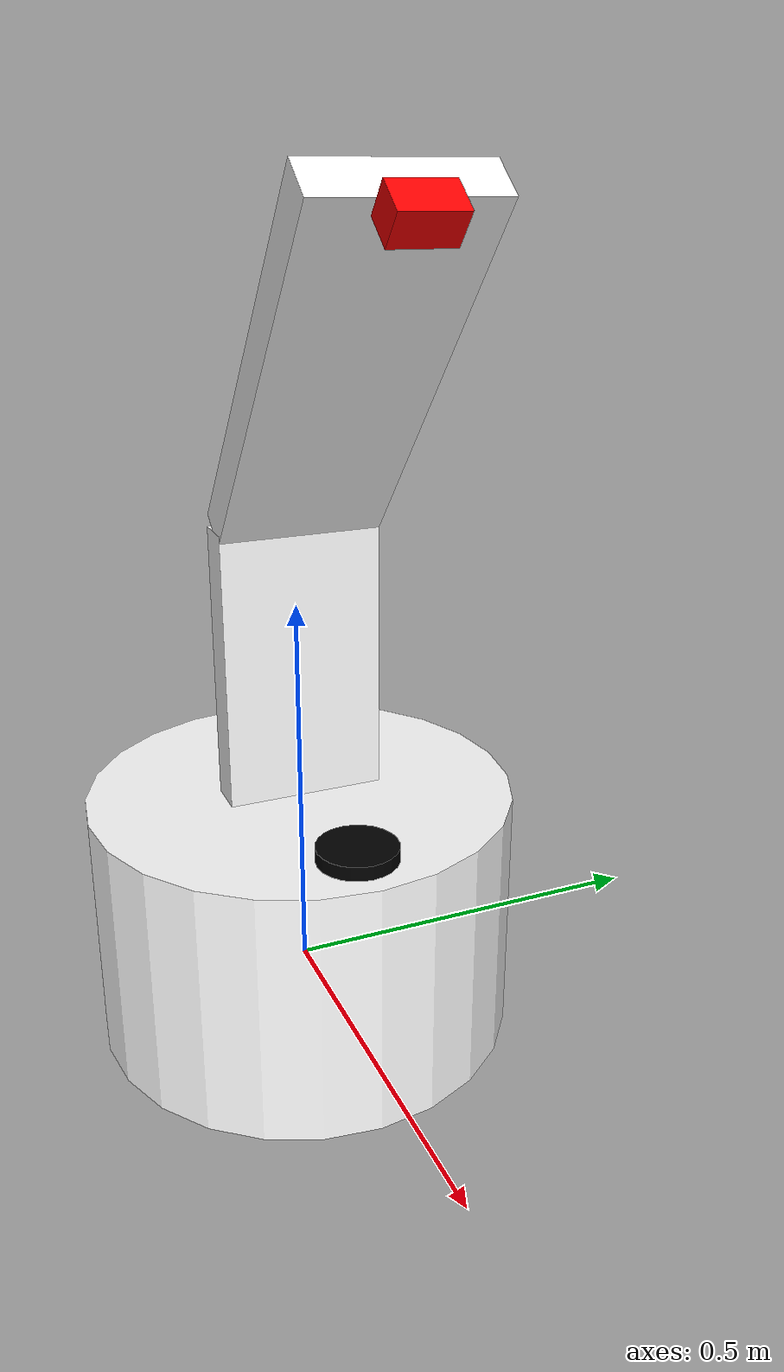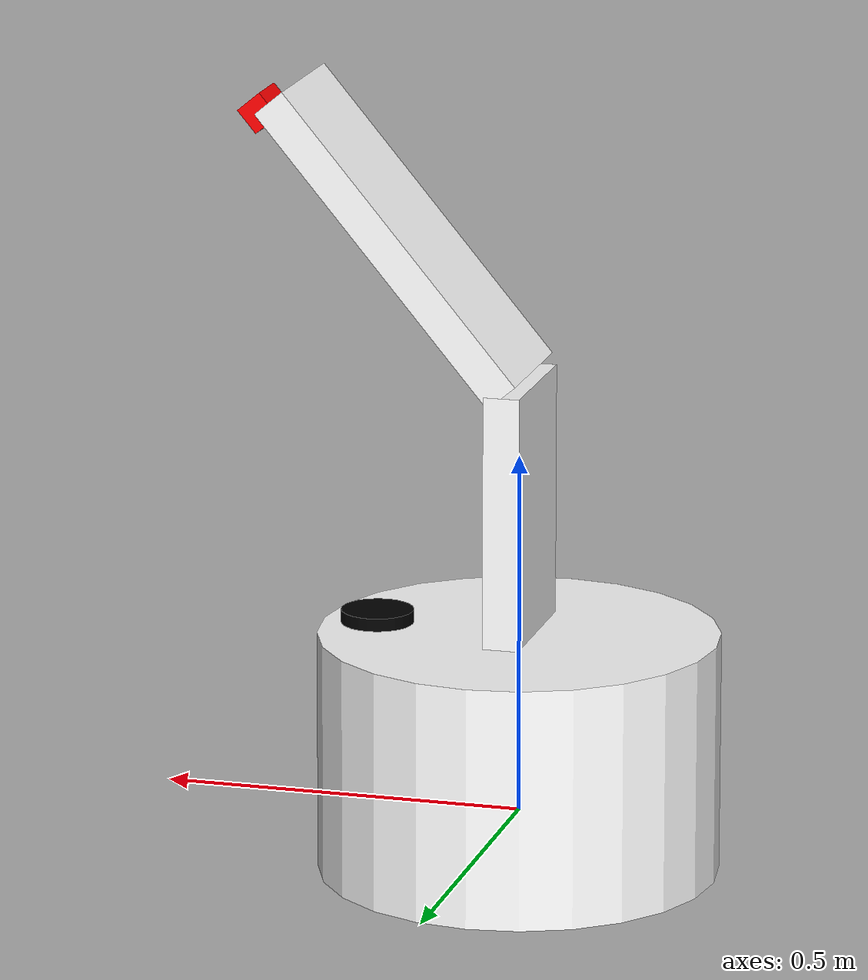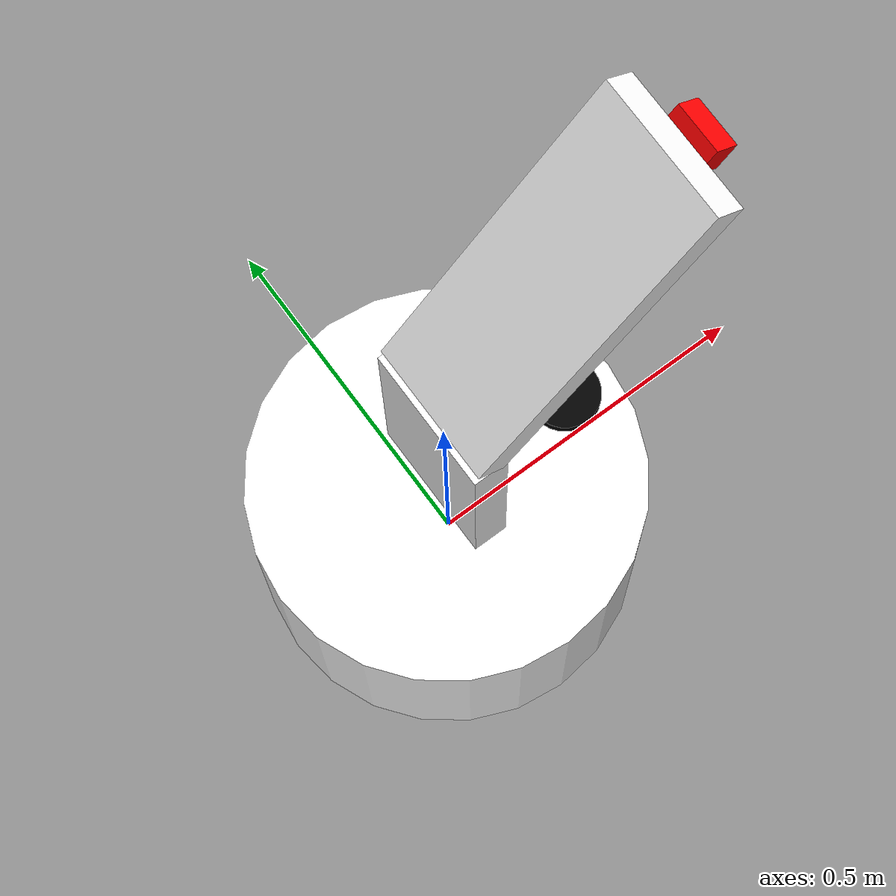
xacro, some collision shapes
<?xml version="1.0"?>
<robot xmlns:xacro="http://www.ros.org/wiki/xacro"  name="robot">

    <xacro:include filename="robot_core_Rui.xacro"/>
    <xacro:include filename="camera.xacro"/>
    <xacro:include filename="lidar.xacro"/>

</robot>

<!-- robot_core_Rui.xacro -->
<robot xmlns:xacro="http://www.ros.org/wiki/xacro" >

    <xacro:include filename="inertial_macros.xacro"/>
    <xacro:include filename="ros2_control.xacro"/>

    <material name="white">
        <color rgba="1 1 1 1"/>
    </material>
    <material name="blue">
        <color rgba="0.2 0.2 1 1"/>
    </material>
    <material name="black">
        <color rgba="0 0 0 1"/>
    </material>
    <material name="red">
        <color rgba="1 0 0 1"/>
    </material>
    <material name="grey">
        <color rgba="0.5 0.5 0.5 1"/>
    </material>

    <!--BASE LINK-->
    <link name="base_link">
    </link>

    <!--BASE FOOTPRINT LINK-->
    <joint name="base_footprint_joint" type="fixed">
        <parent link="base_link"/>
        <child link="base_footprint"/>
        <origin xyz="0 0 0" rpy="0 0 0"/>
    </joint>

    <link name="base_footprint">
    </link>

    <!--CHASSI-->
    <joint name="chassi_joint" type="fixed">
        <parent link="base_link"/>
        <child link="chassi_link"/>
        <origin xyz="0 0 0"/> <!--VIRADO PARA X-->
    </joint>

    <link name="chassi_link">
        <visual>
            <origin xyz="0 0 0.085"/>
            <geometry>
                <cylinder radius="0.275" length="0.334"/>
            </geometry>
            <material name="white"/>
        </visual>
        <collision>
            <origin xyz="0 0 0.085"/>
            <geometry>
                <cylinder radius="0.275" length="0.17"/>
            </geometry>
        </collision>
        <xacro:inertial_cylinder mass="1.0" length="0.17" radius="0.275">
            <origin xyz="0 0 0.085" rpy="0 0 0"/>
        </xacro:inertial_cylinder>
    </link>

    <gazebo reference="chassi_link">
        <material>Gazebo/White</material>
    </gazebo>

    <!--LOWER BODY-->
    <joint name="lower_body_joint" type="prismatic">
        <parent link="base_link"/>
        <child link="lower_body_link"/>
        <origin xyz="0 0 0.25" rpy="0 0 0"/>
        <axis xyz="0 0 1"/>
        <limit lower="0" upper="0.14" velocity="100" effort="100"/>
    </joint>

    <link name="lower_body_link">
        <visual>
            <origin xyz="0 0 0.18" rpy="0 0 ${pi/2}"/>
            <geometry>
                <box size="0.2 0.05 0.35"/>
            </geometry>
            <material name="white"/>
        </visual>
        <collision>
            <origin xyz="0 0 0.18" rpy="0 0 ${pi/2}"/>
            <geometry>
                <box size="0.2 0.05 0.35"/>
            </geometry>
        </collision>
        <xacro:inertial_box mass="0.1" x="0.2" y="0.05" z="0.35">
            <origin xyz="0 0 0.18" rpy="0 0 0"/>
        </xacro:inertial_box>
    </link>

    <gazebo reference="lower_body_link">
        <material>Gazebo/White</material>
        <turnGravityOff>true</turnGravityOff>
    </gazebo>

    <!--UPPER BODY-->
    <joint name="upper_body_joint" type="revolute">
        <parent link="lower_body_link"/>
        <child link="upper_body_link"/>
        <origin xyz="0 0 0.355" rpy="0 0 0"/>
        <axis xyz="0 1 0"/>
        <limit lower="0.1745" upper="1.2217" velocity="100" effort="100"/>
    </joint>

    <link name="upper_body_link">
        <visual>
            <origin xyz="0 0 0.25" rpy="0 0 ${pi/2}"/>
            <geometry>
                <box size="0.2 0.05 0.50"/>
            </geometry>
            <material name="white"/>
        </visual>
        <collision>
            <origin xyz="0 0 0.25" rpy="0 0 ${pi/2}"/>
            <geometry>
                <box size="0.2 0.05 0.50"/>
            </geometry>
        </collision>
        <xacro:inertial_box mass="0.03" x="0.2" y="0.05" z="0.50">
            <origin xyz="0 0 0.25" rpy="0 0 0"/>
        </xacro:inertial_box>
    </link>

    <gazebo reference="upper_body_link">
        <material>Gazebo/White</material>
        <turnGravityOff>true</turnGravityOff>
    </gazebo>

    <xacro:ros2_control_gazebo/>

</robot>

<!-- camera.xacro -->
<robot xmlns:xacro="http://www.ros.org/wiki/xacro">

    <joint name="neck_joint" type="fixed">
        <parent link="upper_body_link"/>
        <child link="neck_link"/>
        <origin xyz="0.045 0 0.5" rpy="0 0 0"/>
    </joint>

    <link name="neck_link">
        <xacro:inertial_box mass="0.1" x="0" y="0" z="0">
            <origin xyz="0 0 0" rpy="0 0 0"/>
        </xacro:inertial_box>
    </link>

    <joint name="camera_joint_z" type="revolute">
        <parent link="neck_link"/>
        <child link="camera_link_z"/>
        <origin xyz="0 0 0" rpy="0 0 0"/>
        <axis xyz="0 1 0"/>
        <limit effort="1000.0" lower="-0.548" upper="0.548" velocity="0.5"/>
    </joint>

    <link name="camera_link_z">
        <xacro:inertial_box mass="0.1" x="0" y="0" z="0">
            <origin xyz="0 0 0" rpy="0 0 0"/>
        </xacro:inertial_box>
    </link>

    <joint name="camera_joint_y" type="revolute">
        <parent link="camera_link_z"/>
        <child link="camera_link_y"/>
        <origin xyz="0 0 0" rpy="0 0 0"/>
        <axis xyz="0 0 1"/>
        <limit effort="1000.0" lower="-0.548" upper="0.548" velocity="0.5"/>
    </joint>

    <link name="camera_link_y">
        <xacro:inertial_box mass="0.1" x="0" y="0" z="0">
            <origin xyz="0 0 0" rpy="0 0 0"/>
        </xacro:inertial_box>
    </link>

    <joint name="camera_joint" type="fixed">
        <parent link="camera_link_y"/>
        <child link="camera_link"/>
        <origin xyz="0 0 0" rpy="0 0 0"/>
    </joint>

    <link name="camera_link">
        <visual>
            <geometry>
                <box size="0.04 0.07 0.04"/>
            </geometry>
            <material name="red"/>
        </visual>
        <xacro:inertial_box mass="0.1" x="0.04" y="0.07" z="0.04">
            <origin xyz="0 0 0" rpy="0 0 0"/>
        </xacro:inertial_box>
    </link>

    <joint name="camera_optical_joint" type="fixed">
        <parent link="camera_link"/>
        <child link="camera_link_optical"/>
        <origin xyz="0 0 0" rpy="${-pi/2} 0 ${-pi/2}"/>
    </joint>

    <link name="camera_link_optical"></link>

    <gazebo reference="camera_link">
        <material>Gazebo/Red</material>

        <sensor name="camera" type="camera">
            <pose> 0 0 0 0 0 0 </pose>
            <visualize>true</visualize>
            <update_rate>10</update_rate>
            <camera>
                <horizontal_fov>1.089</horizontal_fov>
                <image>
                    <format>R8G8B8</format>
                    <width>640</width>
                    <height>480</height>
                </image>
                <clip>
                    <near>0.05</near>
                    <far>8.0</far>
                </clip>
            </camera>
            <plugin name="camera_controller" filename="libgazebo_ros_camera.so">
                <frame_name>camera_link_optical</frame_name>
            </plugin>
        </sensor>
    </gazebo>

</robot>

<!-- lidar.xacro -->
<robot xmlns:xacro="http://www.ros.org/wiki/xacro">

    <joint name="lidar_joint" type="fixed">
        <parent link="chassi_link"/>
        <child link="lidar_frame"/>
        <origin xyz="0.2 0 0.25" rpy="0 0 0"/>
    </joint>

    <link name="lidar_frame">
        <visual>
            <origin xyz="0 0 0" rpy="${pi/2} 0 ${pi}"/>
            <geometry>
                <mesh filename="file://$(find charmie_bot)/description/meshes/lidar.stl" scale="0.001 0.001 0.001"/>
            </geometry>
            <material name="black"/>
        </visual>
        <collision>
            <geometry>
                <cylinder radius="0.05" length="0.04"/>
            </geometry>
        </collision>
        <xacro:inertial_cylinder mass="0.1" length="0.04" radius="0.05">
            <origin xyz="0 0 0" rpy="0 0 0"/>
        </xacro:inertial_cylinder>
    </link>

    <gazebo reference="lidar_frame">
        <material>Gazebo/Black</material>

        <sensor name="laser" type="ray">
            <pose> 0 0 0.055 0 0 0 </pose>
            <visualize>true</visualize>
            <update_rate>10</update_rate>
            <ray>
                <scan>
                    <horizontal>
                        <samples>681</samples>
                        <min_angle>-2.092387973753402</min_angle> <!--19.8 degrees-->
                        <max_angle>2.092387973753402</max_angle>
                    </horizontal>
                </scan>
                <range>
                    <min>0.2</min>
                    <max>5.6</max>
                </range>
            </ray>
            <plugin name="laser_controller" filename="libgazebo_ros_ray_sensor.so">
                <ros>
                    <argument>/scan</argument>
                </ros>
                <output_type>sensor_msgs/LaserScan</output_type>
                <frame_name>lidar_frame</frame_name>
            </plugin>
        </sensor>
    </gazebo>

</robot>
